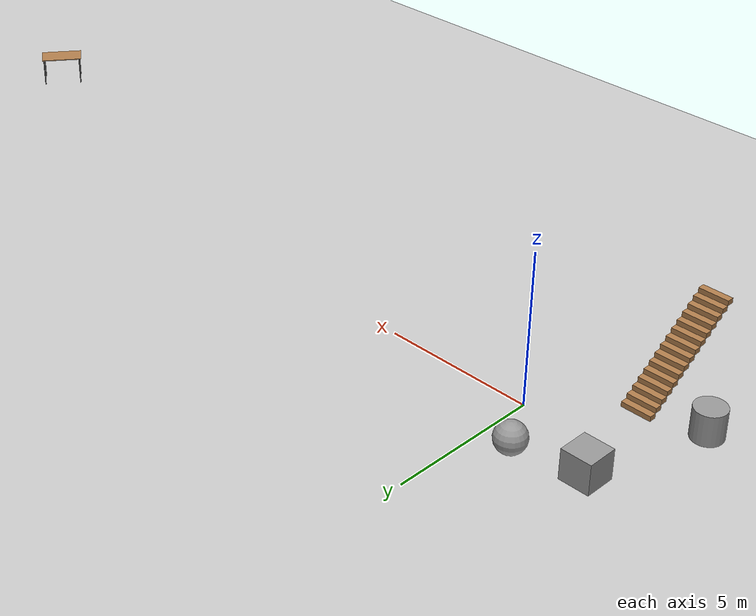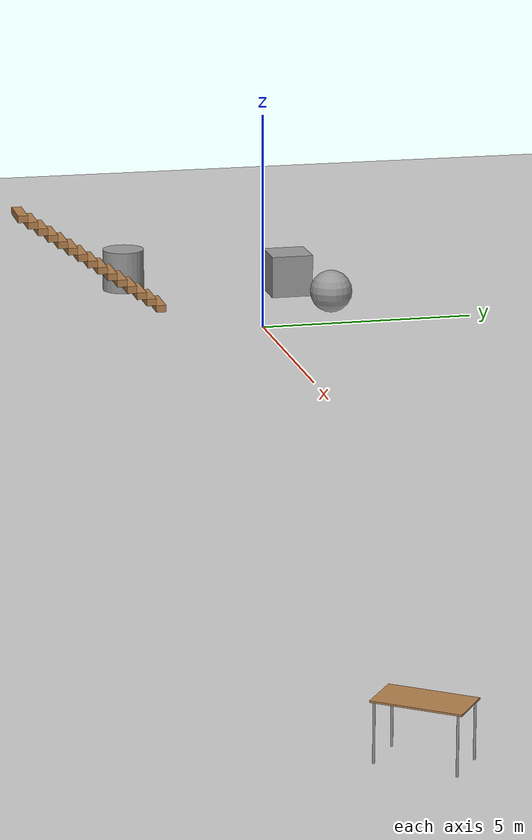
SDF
<sdf version="1.6">
 <world name="default">
  <scene><shadows>0</shadows><ambient>0.4 0.4 0.4 1</ambient><background>0.7 0.7 0.7 1</background></scene>
  <light name="sun" type="directional">
   <pose>0 0 10 0 -0 0</pose>
   <diffuse>0.8 0.8 0.8 1</diffuse>
   <specular>0.2 0.2 0.2 1</specular>
   <attenuation>
    <range>1000</range>
    <constant>0.9</constant>
    <linear>0.01</linear>
    <quadratic>0.001</quadratic>
   </attenuation>
   <direction>-0.5 0.1 -0.9</direction>
  </light>
  <model name="ground_plane">
   <static>1</static>
   <link name="link">
    <collision name="collision">
     <geometry><plane><normal>0 0 1</normal><size>100 100</size></plane></geometry>
     <surface>
      <contact><collide_bitmask>65535</collide_bitmask></contact>
      <friction><ode><mu>100</mu><mu2>50</mu2></ode></friction>
     </surface>
    </collision>
    <visual name="visual">
     <cast_shadows>0</cast_shadows>
     <geometry><plane><normal>0 0 1</normal><size>100 100</size></plane></geometry>
     <material>
      <script><uri>file://media/materials/scripts/gazebo.material</uri><name>Gazebo/Grey</name></script>
     </material>
    </visual>
   </link>
  </model>
  <model name="table">
   <static>1</static>
   <link name="link">
    <collision name="surface">
     <pose>0 0 1 0 -0 0</pose>
     <geometry><box><size>1.5 0.8 0.03</size></box></geometry>
     <surface><friction><ode><mu>0.6</mu><mu2>0.6</mu2></ode></friction></surface>
    </collision>
    <visual name="visual1">
     <pose>0 0 1 0 -0 0</pose>
     <geometry><box><size>1.5 0.8 0.03</size></box></geometry>
     <material>
      <script><uri>file://media/materials/scripts/gazebo.material</uri><name>Gazebo/Wood</name></script>
     </material>
    </visual>
    <collision name="front_left_leg">
     <pose>0.68 0.38 0.5 0 -0 0</pose>
     <geometry><cylinder><radius>0.02</radius><length>1</length></cylinder></geometry>
    </collision>
    <visual name="front_left_leg">
     <pose>0.68 0.38 0.5 0 -0 0</pose>
     <geometry><cylinder><radius>0.02</radius><length>1</length></cylinder></geometry>
     <material>
      <script><uri>file://media/materials/scripts/gazebo.material</uri><name>Gazebo/Grey</name></script>
     </material>
    </visual>
    <collision name="front_right_leg">
     <pose>0.68 -0.38 0.5 0 -0 0</pose>
     <geometry><cylinder><radius>0.02</radius><length>1</length></cylinder></geometry>
    </collision>
    <visual name="front_right_leg">
     <pose>0.68 -0.38 0.5 0 -0 0</pose>
     <geometry><cylinder><radius>0.02</radius><length>1</length></cylinder></geometry>
     <material>
      <script><uri>file://media/materials/scripts/gazebo.material</uri><name>Gazebo/Grey</name></script>
     </material>
    </visual>
    <collision name="back_right_leg">
     <pose>-0.68 -0.38 0.5 0 -0 0</pose>
     <geometry><cylinder><radius>0.02</radius><length>1</length></cylinder></geometry>
    </collision>
    <visual name="back_right_leg">
     <pose>-0.68 -0.38 0.5 0 -0 0</pose>
     <geometry><cylinder><radius>0.02</radius><length>1</length></cylinder></geometry>
     <material>
      <script><uri>file://media/materials/scripts/gazebo.material</uri><name>Gazebo/Grey</name></script>
     </material>
    </visual>
    <collision name="back_left_leg">
     <pose>-0.68 0.38 0.5 0 -0 0</pose>
     <geometry><cylinder><radius>0.02</radius><length>1</length></cylinder></geometry>
    </collision>
    <visual name="back_left_leg">
     <pose>-0.68 0.38 0.5 0 -0 0</pose>
     <geometry><cylinder><radius>0.02</radius><length>1</length></cylinder></geometry>
     <material>
      <script><uri>file://media/materials/scripts/gazebo.material</uri><name>Gazebo/Grey</name></script>
     </material>
    </visual>
   </link>
   <pose>26.608 -3.569 0 0 -0 0.934</pose>
  </model>
  <gravity>0 0 -9.8</gravity>
  <magnetic_field>6e-06 2.3e-05 -4.2e-05</magnetic_field>
  <atmosphere type="adiabatic"/>
  <physics name="default_physics" default="0" type="ode">
   <max_step_size>0.001</max_step_size>
   <real_time_factor>1</real_time_factor>
   <real_time_update_rate>1000</real_time_update_rate>
  </physics>
  <audio><device>default</device></audio>
  <spherical_coordinates>
   <surface_model>EARTH_WGS84</surface_model>
   <latitude_deg>0</latitude_deg>
   <longitude_deg>0</longitude_deg>
   <elevation>0</elevation>
   <heading_deg>0</heading_deg>
  </spherical_coordinates>
  <light name="user_point_light_0" type="point">
   <pose>-1.2142 0.348747 1 0 -0 0</pose>
   <diffuse>0.5 0.5 0.5 1</diffuse>
   <specular>0.1 0.1 0.1 1</specular>
   <attenuation>
    <range>20</range>
    <constant>0.5</constant>
    <linear>0.01</linear>
    <quadratic>0.001</quadratic>
   </attenuation>
   <cast_shadows>0</cast_shadows>
   <direction>0 0 -1</direction>
  </light>
  <light name="user_point_light_1" type="point">
   <pose>-5.15397 -3.94103 1 0 -0 0</pose>
   <diffuse>0.5 0.5 0.5 1</diffuse>
   <specular>0.1 0.1 0.1 1</specular>
   <attenuation>
    <range>20</range>
    <constant>0.5</constant>
    <linear>0.01</linear>
    <quadratic>0.001</quadratic>
   </attenuation>
   <cast_shadows>0</cast_shadows>
   <direction>0 0 -1</direction>
  </light>
  <light name="user_point_light_2" type="point">
   <pose>-6.59256 0.894682 1 0 -0 0</pose>
   <diffuse>0.5 0.5 0.5 1</diffuse>
   <specular>0.1 0.1 0.1 1</specular>
   <attenuation>
    <range>20</range>
    <constant>0.5</constant>
    <linear>0.01</linear>
    <quadratic>0.001</quadratic>
   </attenuation>
   <cast_shadows>0</cast_shadows>
   <direction>0 0 -1</direction>
  </light>
  <light name="user_directional_light_0" type="directional">
   <pose>-1.28558 1.24443 1 0 -0 0</pose>
   <diffuse>0.5 0.5 0.5 1</diffuse>
   <specular>0.1 0.1 0.1 1</specular>
   <direction>0.1 0.1 -0.9</direction>
   <attenuation>
    <range>20</range>
    <constant>0.5</constant>
    <linear>0.01</linear>
    <quadratic>0.001</quadratic>
   </attenuation>
  </light>
  <model name="stairs">
   <pose>-2.41 -3.66185 0 0 -0 0</pose>
   <link name="Stairs_1">
    <visual name="Stairs_1_Visual_0">
     <pose>0 1.63333 0.083333 0 -0 0</pose>
     <geometry><box><size>1 0.233333 0.166667</size></box></geometry>
     <material>
      <script><uri>file://media/materials/scripts/gazebo.material</uri><name>Gazebo/Wood</name></script>
      <ambient>0.996078 0.47451 0.0196078 1</ambient>
     </material>
     <meta><layer>0</layer></meta>
    </visual>
    <collision name="Stairs_1_Collision_0">
     <geometry><box><size>1 0.233333 0.166667</size></box></geometry>
     <pose>0 1.63333 0.083333 0 -0 0</pose>
    </collision>
    <visual name="Stairs_1_Visual_1">
     <pose>0 1.4 0.25 0 -0 0</pose>
     <geometry><box><size>1 0.233333 0.166667</size></box></geometry>
     <material>
      <script><uri>file://media/materials/scripts/gazebo.material</uri><name>Gazebo/Wood</name></script>
      <ambient>0.996078 0.47451 0.0196078 1</ambient>
     </material>
     <meta><layer>0</layer></meta>
    </visual>
    <collision name="Stairs_1_Collision_1">
     <geometry><box><size>1 0.233333 0.166667</size></box></geometry>
     <pose>0 1.4 0.25 0 -0 0</pose>
    </collision>
    <visual name="Stairs_1_Visual_2">
     <pose>0 1.16667 0.416667 0 -0 0</pose>
     <geometry><box><size>1 0.233333 0.166667</size></box></geometry>
     <material>
      <script><uri>file://media/materials/scripts/gazebo.material</uri><name>Gazebo/Wood</name></script>
      <ambient>0.996078 0.47451 0.0196078 1</ambient>
     </material>
     <meta><layer>0</layer></meta>
    </visual>
    <collision name="Stairs_1_Collision_2">
     <geometry><box><size>1 0.233333 0.166667</size></box></geometry>
     <pose>0 1.16667 0.416667 0 -0 0</pose>
    </collision>
    <visual name="Stairs_1_Visual_3">
     <pose>0 0.933333 0.583333 0 -0 0</pose>
     <geometry><box><size>1 0.233333 0.166667</size></box></geometry>
     <material>
      <script><uri>file://media/materials/scripts/gazebo.material</uri><name>Gazebo/Wood</name></script>
      <ambient>0.996078 0.47451 0.0196078 1</ambient>
     </material>
     <meta><layer>0</layer></meta>
    </visual>
    <collision name="Stairs_1_Collision_3">
     <geometry><box><size>1 0.233333 0.166667</size></box></geometry>
     <pose>0 0.933333 0.583333 0 -0 0</pose>
    </collision>
    <visual name="Stairs_1_Visual_4">
     <pose>0 0.7 0.75 0 -0 0</pose>
     <geometry><box><size>1 0.233333 0.166667</size></box></geometry>
     <material>
      <script><uri>file://media/materials/scripts/gazebo.material</uri><name>Gazebo/Wood</name></script>
      <ambient>0.996078 0.47451 0.0196078 1</ambient>
     </material>
     <meta><layer>0</layer></meta>
    </visual>
    <collision name="Stairs_1_Collision_4">
     <geometry><box><size>1 0.233333 0.166667</size></box></geometry>
     <pose>0 0.7 0.75 0 -0 0</pose>
    </collision>
    <visual name="Stairs_1_Visual_5">
     <pose>0 0.466667 0.916667 0 -0 0</pose>
     <geometry><box><size>1 0.233333 0.166667</size></box></geometry>
     <material>
      <script><uri>file://media/materials/scripts/gazebo.material</uri><name>Gazebo/Wood</name></script>
      <ambient>0.996078 0.47451 0.0196078 1</ambient>
     </material>
     <meta><layer>0</layer></meta>
    </visual>
    <collision name="Stairs_1_Collision_5">
     <geometry><box><size>1 0.233333 0.166667</size></box></geometry>
     <pose>0 0.466667 0.916667 0 -0 0</pose>
    </collision>
    <visual name="Stairs_1_Visual_6">
     <pose>0 0.233333 1.08333 0 -0 0</pose>
     <geometry><box><size>1 0.233333 0.166667</size></box></geometry>
     <material>
      <script><uri>file://media/materials/scripts/gazebo.material</uri><name>Gazebo/Wood</name></script>
      <ambient>0.996078 0.47451 0.0196078 1</ambient>
     </material>
     <meta><layer>0</layer></meta>
    </visual>
    <collision name="Stairs_1_Collision_6">
     <geometry><box><size>1 0.233333 0.166667</size></box></geometry>
     <pose>0 0.233333 1.08333 0 -0 0</pose>
    </collision>
    <visual name="Stairs_1_Visual_7">
     <pose>0 0 1.25 0 -0 0</pose>
     <geometry><box><size>1 0.233333 0.166667</size></box></geometry>
     <material>
      <script><uri>file://media/materials/scripts/gazebo.material</uri><name>Gazebo/Wood</name></script>
      <ambient>0.996078 0.47451 0.0196078 1</ambient>
     </material>
     <meta><layer>0</layer></meta>
    </visual>
    <collision name="Stairs_1_Collision_7">
     <geometry><box><size>1 0.233333 0.166667</size></box></geometry>
     <pose>0 0 1.25 0 -0 0</pose>
    </collision>
    <visual name="Stairs_1_Visual_8">
     <pose>0 -0.233333 1.41667 0 -0 0</pose>
     <geometry><box><size>1 0.233333 0.166667</size></box></geometry>
     <material>
      <script><uri>file://media/materials/scripts/gazebo.material</uri><name>Gazebo/Wood</name></script>
      <ambient>0.996078 0.47451 0.0196078 1</ambient>
     </material>
     <meta><layer>0</layer></meta>
    </visual>
    <collision name="Stairs_1_Collision_8">
     <geometry><box><size>1 0.233333 0.166667</size></box></geometry>
     <pose>0 -0.233333 1.41667 0 -0 0</pose>
    </collision>
    <visual name="Stairs_1_Visual_9">
     <pose>0 -0.466667 1.58333 0 -0 0</pose>
     <geometry><box><size>1 0.233333 0.166667</size></box></geometry>
     <material>
      <script><uri>file://media/materials/scripts/gazebo.material</uri><name>Gazebo/Wood</name></script>
      <ambient>0.996078 0.47451 0.0196078 1</ambient>
     </material>
     <meta><layer>0</layer></meta>
    </visual>
    <collision name="Stairs_1_Collision_9">
     <geometry><box><size>1 0.233333 0.166667</size></box></geometry>
     <pose>0 -0.466667 1.58333 0 -0 0</pose>
    </collision>
    <visual name="Stairs_1_Visual_10">
     <pose>0 -0.7 1.75 0 -0 0</pose>
     <geometry><box><size>1 0.233333 0.166667</size></box></geometry>
     <material>
      <script><uri>file://media/materials/scripts/gazebo.material</uri><name>Gazebo/Wood</name></script>
      <ambient>0.996078 0.47451 0.0196078 1</ambient>
     </material>
     <meta><layer>0</layer></meta>
    </visual>
    <collision name="Stairs_1_Collision_10">
     <geometry><box><size>1 0.233333 0.166667</size></box></geometry>
     <pose>0 -0.7 1.75 0 -0 0</pose>
    </collision>
    <visual name="Stairs_1_Visual_11">
     <pose>0 -0.933333 1.91667 0 -0 0</pose>
     <geometry><box><size>1 0.233333 0.166667</size></box></geometry>
     <material>
      <script><uri>file://media/materials/scripts/gazebo.material</uri><name>Gazebo/Wood</name></script>
      <ambient>0.996078 0.47451 0.0196078 1</ambient>
     </material>
     <meta><layer>0</layer></meta>
    </visual>
    <collision name="Stairs_1_Collision_11">
     <geometry><box><size>1 0.233333 0.166667</size></box></geometry>
     <pose>0 -0.933333 1.91667 0 -0 0</pose>
    </collision>
    <visual name="Stairs_1_Visual_12">
     <pose>0 -1.16667 2.08333 0 -0 0</pose>
     <geometry><box><size>1 0.233333 0.166667</size></box></geometry>
     <material>
      <script><uri>file://media/materials/scripts/gazebo.material</uri><name>Gazebo/Wood</name></script>
      <ambient>0.996078 0.47451 0.0196078 1</ambient>
     </material>
     <meta><layer>0</layer></meta>
    </visual>
    <collision name="Stairs_1_Collision_12">
     <geometry><box><size>1 0.233333 0.166667</size></box></geometry>
     <pose>0 -1.16667 2.08333 0 -0 0</pose>
    </collision>
    <visual name="Stairs_1_Visual_13">
     <pose>0 -1.4 2.25 0 -0 0</pose>
     <geometry><box><size>1 0.233333 0.166667</size></box></geometry>
     <material>
      <script><uri>file://media/materials/scripts/gazebo.material</uri><name>Gazebo/Wood</name></script>
      <ambient>0.996078 0.47451 0.0196078 1</ambient>
     </material>
     <meta><layer>0</layer></meta>
    </visual>
    <collision name="Stairs_1_Collision_13">
     <geometry><box><size>1 0.233333 0.166667</size></box></geometry>
     <pose>0 -1.4 2.25 0 -0 0</pose>
    </collision>
    <visual name="Stairs_1_Visual_14">
     <pose>0 -1.63333 2.41667 0 -0 0</pose>
     <geometry><box><size>1 0.233333 0.166667</size></box></geometry>
     <material>
      <script><uri>file://media/materials/scripts/gazebo.material</uri><name>Gazebo/Wood</name></script>
      <ambient>0.996078 0.47451 0.0196078 1</ambient>
     </material>
     <meta><layer>0</layer></meta>
    </visual>
    <collision name="Stairs_1_Collision_14">
     <geometry><box><size>1 0.233333 0.166667</size></box></geometry>
     <pose>0 -1.63333 2.41667 0 -0 0</pose>
    </collision>
   </link>
   <static>1</static>
  </model>
  <model name="unit_box">
   <pose>-3.1949 1.35248 0.5 0 -0 0</pose>
   <link name="link">
    <inertial>
     <mass>1</mass>
     <inertia>
      <ixx>0.166667</ixx>
      <ixy>0</ixy>
      <ixz>0</ixz>
      <iyy>0.166667</iyy>
      <iyz>0</iyz>
      <izz>0.166667</izz>
     </inertia>
    </inertial>
    <collision name="collision"><geometry><box><size>1 1 1</size></box></geometry></collision>
    <visual name="visual">
     <geometry><box><size>1 1 1</size></box></geometry>
     <material>
      <script><name>Gazebo/Grey</name><uri>file://media/materials/scripts/gazebo.material</uri></script>
     </material>
    </visual>
   </link>
  </model>
  <model name="unit_cylinder">
   <pose>-4.37602 -2.48415 0.5 0 -0 0</pose>
   <link name="link">
    <inertial>
     <mass>1</mass>
     <inertia><ixx>0.145833</ixx><ixy>0</ixy><ixz>0</ixz><iyy>0.145833</iyy><iyz>0</iyz><izz>0.125</izz></inertia>
    </inertial>
    <collision name="collision">
     <geometry><cylinder><radius>0.5</radius><length>1</length></cylinder></geometry>
    </collision>
    <visual name="visual">
     <geometry><cylinder><radius>0.5</radius><length>1</length></cylinder></geometry>
     <material>
      <script><name>Gazebo/Grey</name><uri>file://media/materials/scripts/gazebo.material</uri></script>
     </material>
    </visual>
   </link>
  </model>
  <model name="unit_sphere">
   <pose>-1.08203 1.90635 0.5 0 -0 0</pose>
   <link name="link">
    <inertial>
     <mass>1</mass>
     <inertia><ixx>0.1</ixx><ixy>0</ixy><ixz>0</ixz><iyy>0.1</iyy><iyz>0</iyz><izz>0.1</izz></inertia>
    </inertial>
    <collision name="collision"><geometry><sphere><radius>0.5</radius></sphere></geometry></collision>
    <visual name="visual">
     <geometry><sphere><radius>0.5</radius></sphere></geometry>
     <material>
      <script><name>Gazebo/Grey</name><uri>file://media/materials/scripts/gazebo.material</uri></script>
     </material>
    </visual>
   </link>
  </model>
 </world>
</sdf>
